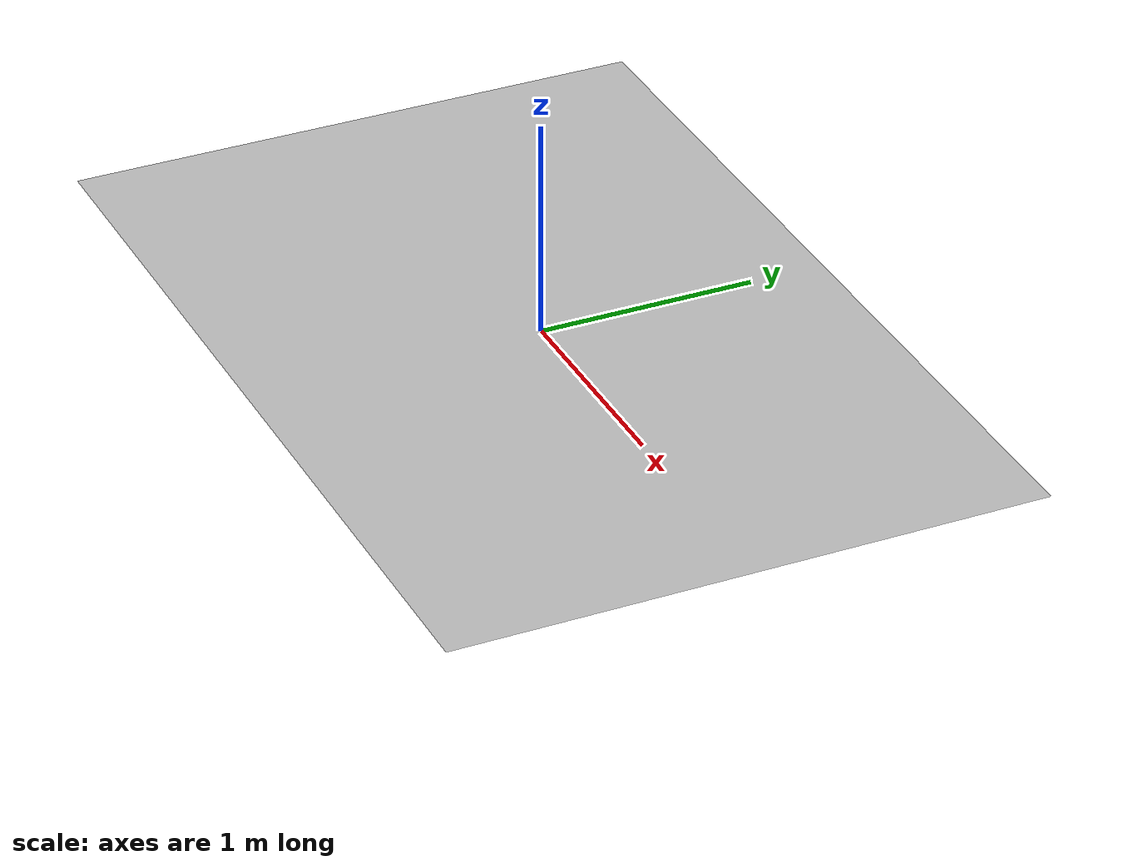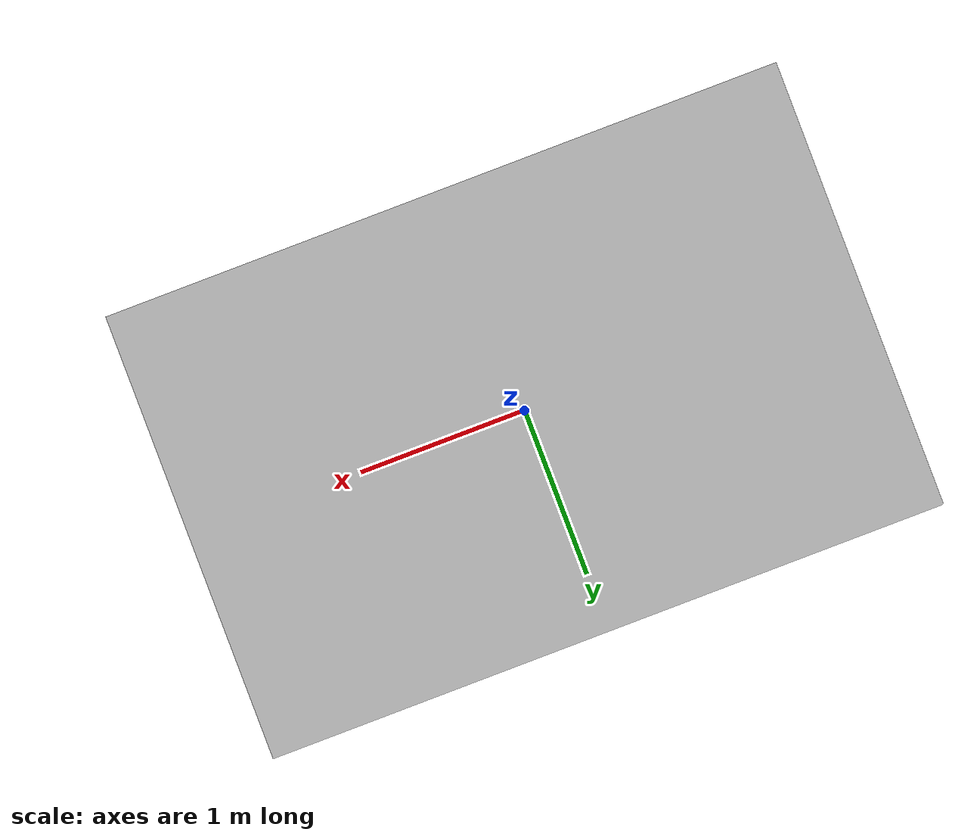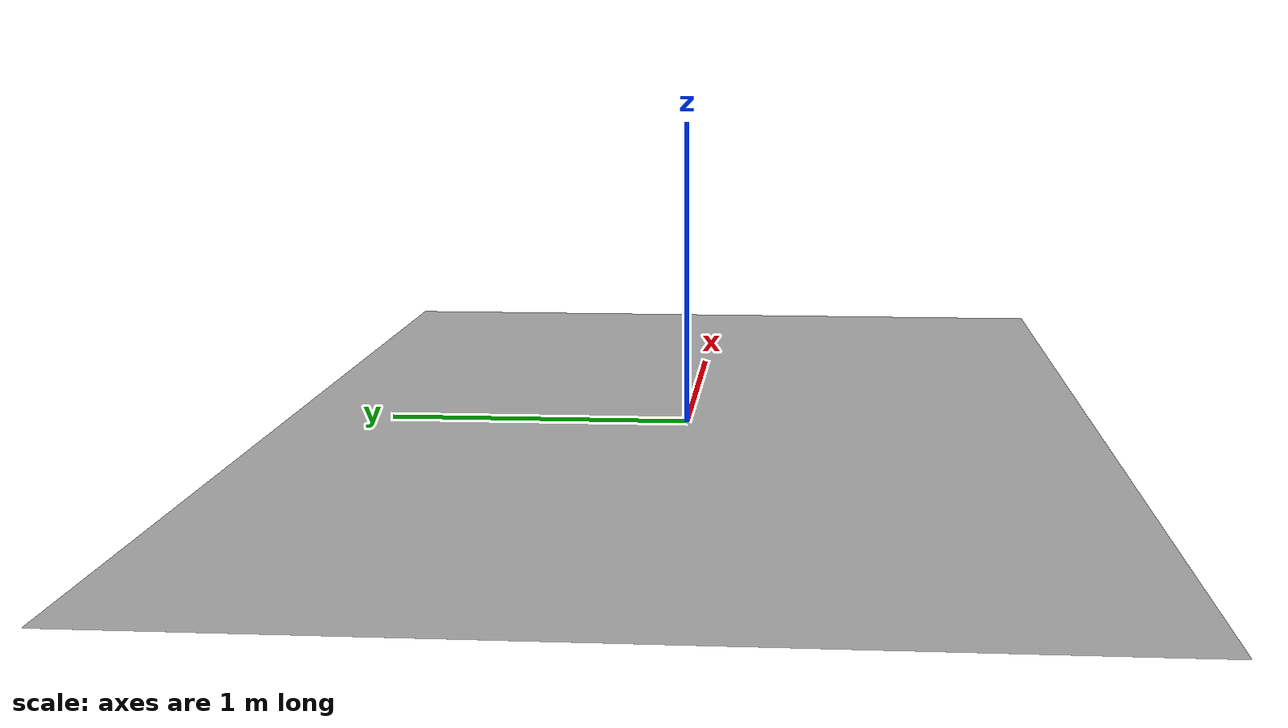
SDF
<?xml version="1.0" ?>
<sdf version="1.5">
  <model name="billboard_5">
    <static>true</static>
      <link name="billboard_5">
        <collision name="billboard-collision">
          <pose>0 0 0 0 0 0</pose>
          <geometry>
            <box>
              <size>4.1 2.7 0.00</size>
            </box>
          </geometry>
        </collision>
        <visual name="billboard-visual">
          <pose>0 0 0 0 0 0</pose>
          <geometry>
            <box>
              <size>4.1 2.7 0.00</size>
            </box>
          </geometry>
          <material>
            <script>
              <uri>model://billboard_5/materials/scripts</uri>
              <uri>model://billboard_5/materials/textures</uri>
              <name>billboard_5/Diffuse</name>
            </script>
          </material>
        </visual>
      </link>
  </model>
</sdf>
